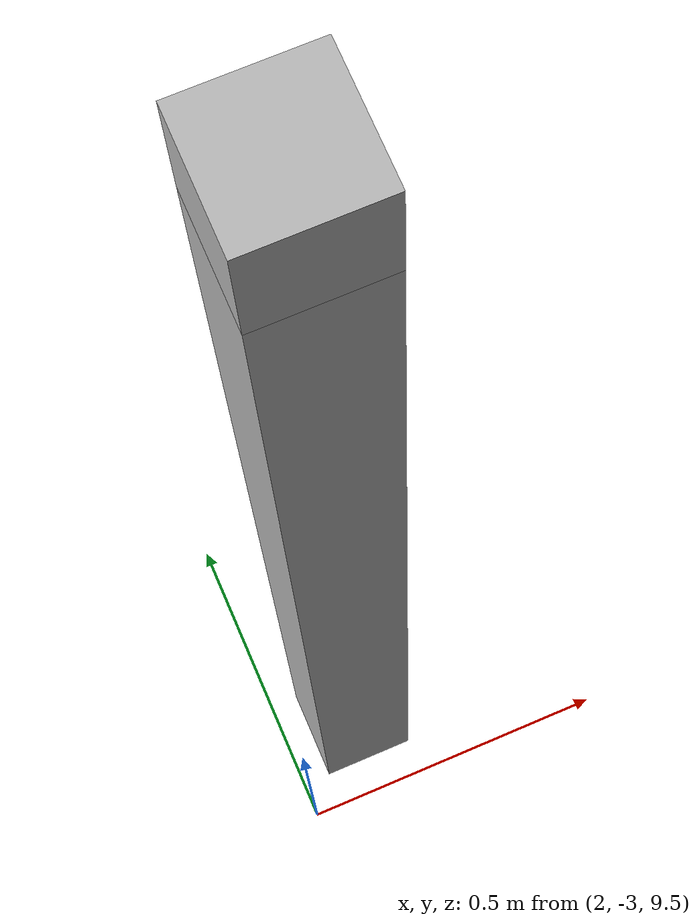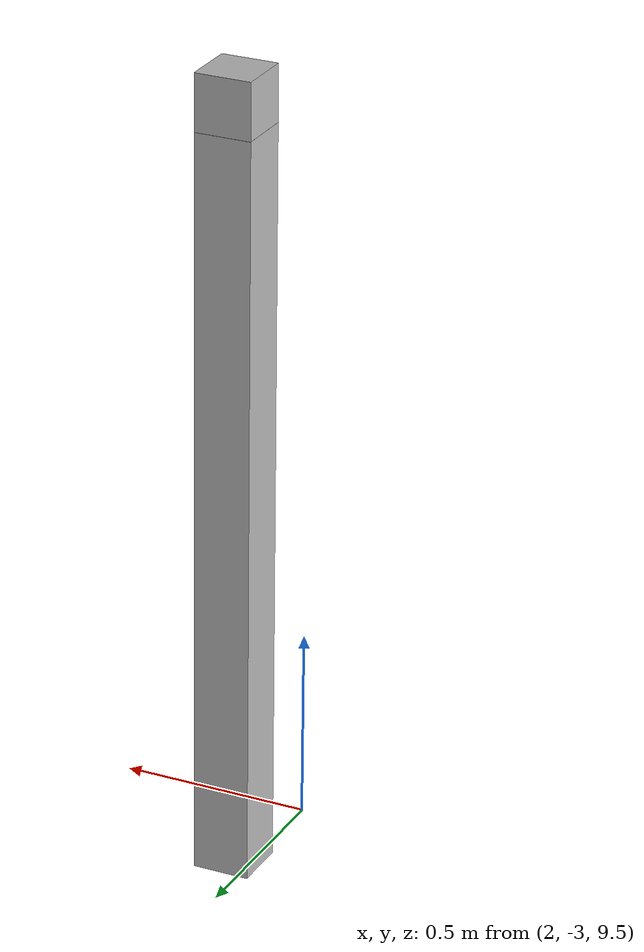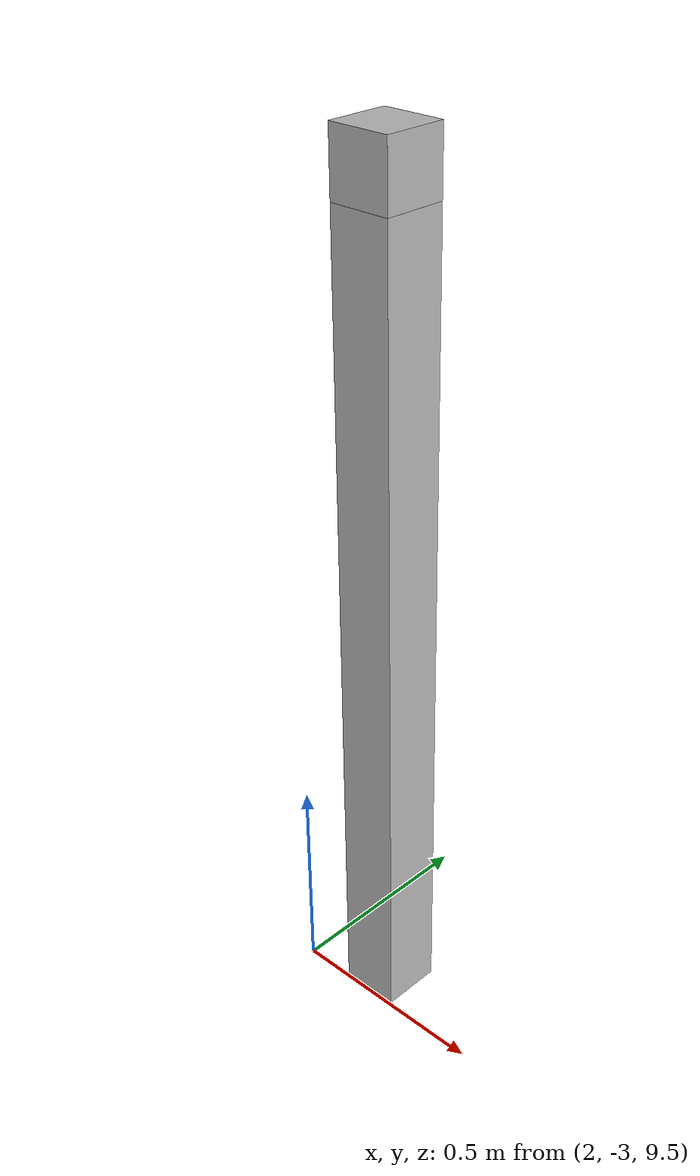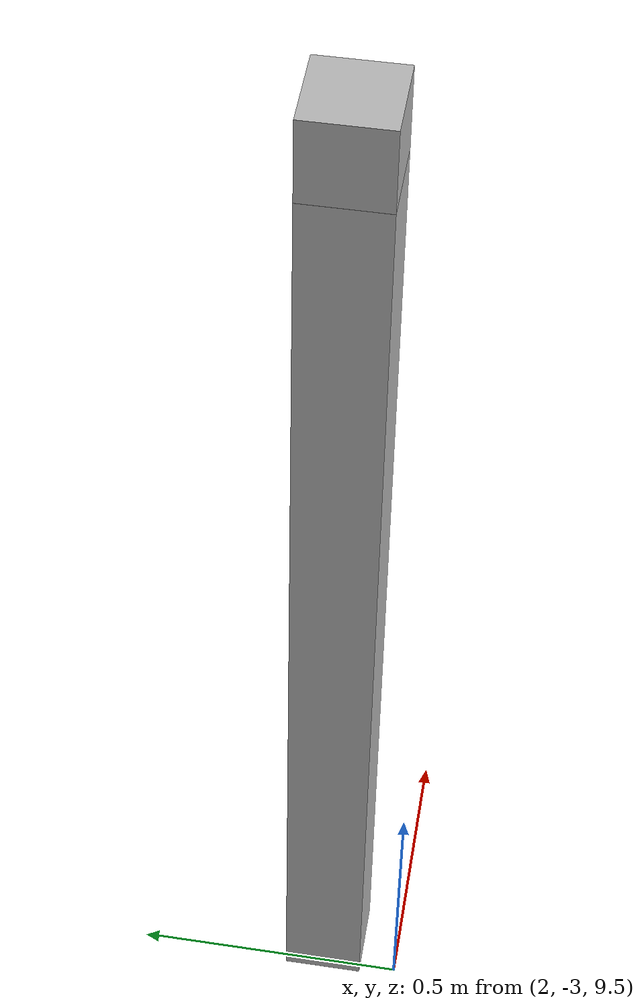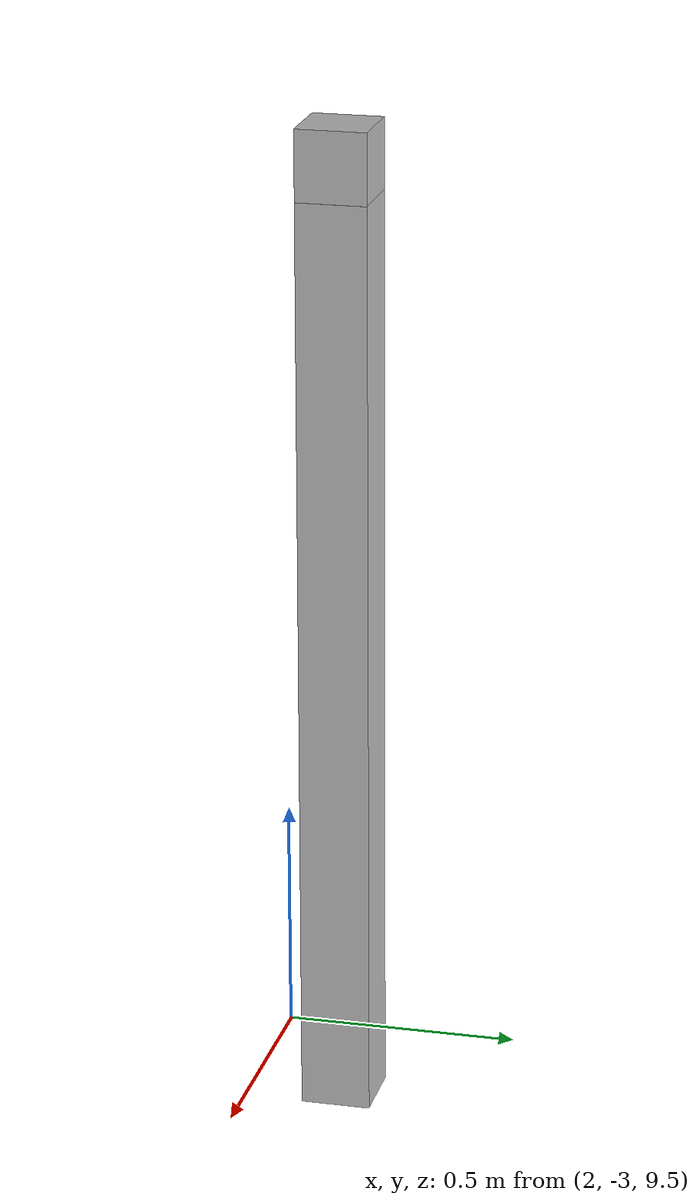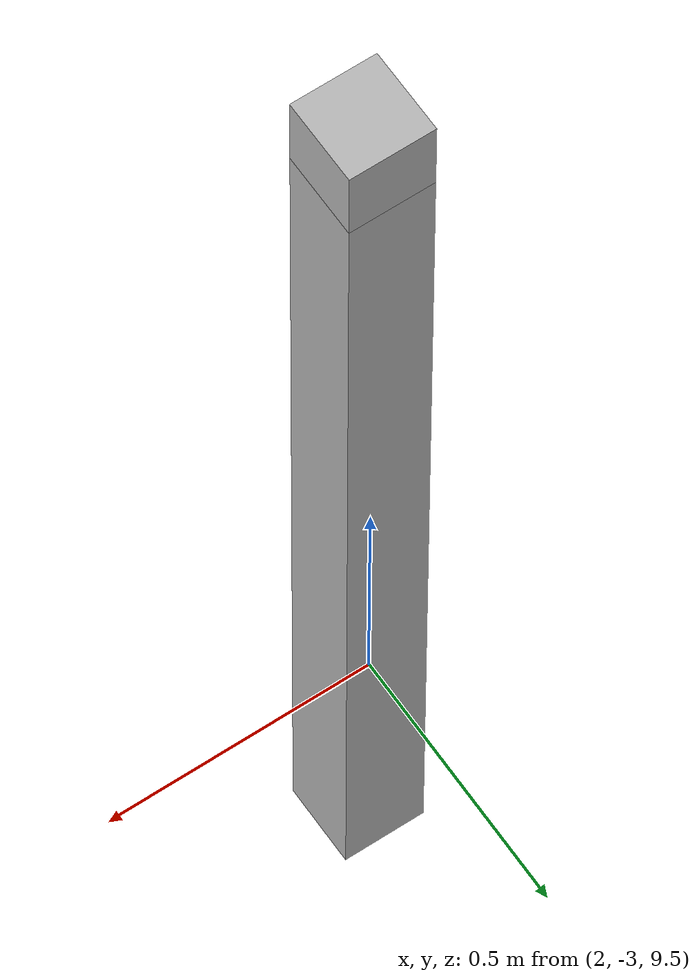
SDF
<sdf version="1.7">
 <world name="default">
  <model name="orthogonal_747_2.000.15_TS">
   <static>1</static>
   <link name="u_link_6_1_4">
    <inertial>
     <mass>1</mass>
     <inertia>
      <ixx>0.166667</ixx>
      <ixy>0</ixy>
      <ixz>0</ixz>
      <iyy>0.166667</iyy>
      <iyz>0</iyz>
      <izz>0.166667</izz>
     </inertia>
    </inertial>
    <pose>8.6 2.15 13.975 0 -0 0</pose>
    <visual name="visual_0">
     <laser_retro>5608</laser_retro>
     <geometry><box><size>0.15 1e-06 0.15</size></box></geometry>
     <material>
      <script><name>Gazebo/Grey</name><uri>file://media/materials/scripts/gazebo.material</uri></script>
      <shader type="pixel"><normal_map>__default__</normal_map></shader>
      <ambient>0.678 0.498 0.659 1</ambient>
      <diffuse>0.7 0.7 0.7 1</diffuse>
      <specular>0.01 0.01 0.01 1</specular>
      <emissive>0 0 0 1</emissive>
     </material>
     <pose>0 -0.075 0 0 -0 0</pose>
     <transparency>1</transparency>
    </visual>
    <visual name="visual_1">
     <laser_retro>5609</laser_retro>
     <geometry><box><size>0.15 1e-06 0.15</size></box></geometry>
     <material>
      <script><name>Gazebo/Grey</name><uri>file://media/materials/scripts/gazebo.material</uri></script>
      <shader type="pixel"><normal_map>__default__</normal_map></shader>
      <ambient>0.447 0.624 0.812 1</ambient>
      <diffuse>0.7 0.7 0.7 1</diffuse>
      <specular>0.01 0.01 0.01 1</specular>
      <emissive>0 0 0 1</emissive>
     </material>
     <pose>0 0.075 0 0 -0 0</pose>
     <transparency>1</transparency>
    </visual>
    <visual name="visual_2">
     <laser_retro>5610</laser_retro>
     <geometry><box><size>0.15 0.15 1e-06</size></box></geometry>
     <material>
      <script><name>Gazebo/Grey</name><uri>file://media/materials/scripts/gazebo.material</uri></script>
      <shader type="pixel"><normal_map>__default__</normal_map></shader>
      <ambient>0.988 0.686 0.243 1</ambient>
      <diffuse>0.7 0.7 0.7 1</diffuse>
      <specular>0.01 0.01 0.01 1</specular>
      <emissive>0 0 0 1</emissive>
     </material>
     <pose>0 0 -0.075 0 -0 0</pose>
     <transparency>1</transparency>
    </visual>
    <visual name="visual_3">
     <laser_retro>5611</laser_retro>
     <geometry><box><size>1e-06 0.15 0.15</size></box></geometry>
     <material>
      <script><name>Gazebo/Grey</name><uri>file://media/materials/scripts/gazebo.material</uri></script>
      <shader type="pixel"><normal_map>__default__</normal_map></shader>
      <ambient>0.988 0.914 0.31 1</ambient>
      <diffuse>0.7 0.7 0.7 1</diffuse>
      <specular>0.01 0.01 0.01 1</specular>
      <emissive>0 0 0 1</emissive>
     </material>
     <pose>0.075 0 0 0 -0 0</pose>
     <transparency>1</transparency>
    </visual>
    <visual name="visual_4">
     <laser_retro>5612</laser_retro>
     <geometry><box><size>0.15 0.15 1e-06</size></box></geometry>
     <material>
      <script><name>Gazebo/Grey</name><uri>file://media/materials/scripts/gazebo.material</uri></script>
      <shader type="pixel"><normal_map>__default__</normal_map></shader>
      <ambient>0.937 0.161 0.161 1</ambient>
      <diffuse>0.7 0.7 0.7 1</diffuse>
      <specular>0.01 0.01 0.01 1</specular>
      <emissive>0 0 0 1</emissive>
     </material>
     <pose>0 0 0.075 0 -0 0</pose>
     <transparency>1</transparency>
    </visual>
    <visual name="visual_5">
     <laser_retro>5613</laser_retro>
     <geometry><box><size>1e-06 0.15 0.15</size></box></geometry>
     <material>
      <script><name>Gazebo/Grey</name><uri>file://media/materials/scripts/gazebo.material</uri></script>
      <shader type="pixel"><normal_map>__default__</normal_map></shader>
      <ambient>0.541 0.886 0.204 1</ambient>
      <diffuse>0.7 0.7 0.7 1</diffuse>
      <specular>0.01 0.01 0.01 1</specular>
      <emissive>0 0 0 1</emissive>
     </material>
     <pose>-0.075 0 0 0 -0 0</pose>
     <transparency>1</transparency>
    </visual>
    <visual name="visual_texture">
     <geometry><box><size>0.149985 0.149985 0.149985</size></box></geometry>
     <material>
      <script>
       <uri>model://BASE_MODELS/simple_block_v2_textured/materials/scripts</uri>
       <uri>model://BASE_MODELS/simple_block_v2_textured/materials/textures</uri>
       <name>metal</name>
      </script>
     </material>
     <laser_retro>5614</laser_retro>
    </visual>
    <collision name="collision">
     <geometry><box><size>0.15 0.15 0.15</size></box></geometry>
     <surface>
      <friction>
       <ode><mu>1</mu><mu2>1</mu2><fdir1>0 0 0</fdir1><slip1>0</slip1><slip2>0</slip2></ode>
       <torsional>
        <coefficient>1</coefficient>
        <patch_radius>0</patch_radius>
        <surface_radius>0</surface_radius>
        <use_patch_radius>1</use_patch_radius>
        <ode><slip>0</slip></ode>
       </torsional>
      </friction>
      <bounce><restitution_coefficient>0</restitution_coefficient><threshold>1e+06</threshold></bounce>
      <contact>
       <collide_without_contact>0</collide_without_contact>
       <collide_without_contact_bitmask>1</collide_without_contact_bitmask>
       <collide_bitmask>1</collide_bitmask>
       <ode>
        <soft_cfm>0</soft_cfm>
        <soft_erp>0.2</soft_erp>
        <kp>1e+13</kp>
        <kd>1</kd>
        <max_vel>0.01</max_vel>
        <min_depth>0</min_depth>
       </ode>
       <bullet>
        <split_impulse>1</split_impulse>
        <split_impulse_penetration_threshold>-0.01</split_impulse_penetration_threshold>
        <soft_cfm>0</soft_cfm>
        <soft_erp>0.2</soft_erp>
        <kp>1e+13</kp>
        <kd>1</kd>
       </bullet>
      </contact>
     </surface>
    </collision>
   </link>
   <link name="z_link_6_1_4">
    <inertial>
     <mass>1</mass>
     <inertia>
      <ixx>0.166667</ixx>
      <ixy>0</ixy>
      <ixz>0</ixz>
      <iyy>0.166667</iyy>
      <iyz>0</iyz>
      <izz>0.166667</izz>
     </inertia>
    </inertial>
    <pose>8.6 2.15 12.9 0 -0 0</pose>
    <visual name="visual_0">
     <laser_retro>5615</laser_retro>
     <geometry><box><size>0.15 1e-06 2</size></box></geometry>
     <material>
      <script><name>Gazebo/Grey</name><uri>file://media/materials/scripts/gazebo.material</uri></script>
      <shader type="pixel"><normal_map>__default__</normal_map></shader>
      <ambient>0.678 0.498 0.659 1</ambient>
      <diffuse>0.7 0.7 0.7 1</diffuse>
      <specular>0.01 0.01 0.01 1</specular>
      <emissive>0 0 0 1</emissive>
     </material>
     <pose>0 -0.075 0 0 -0 0</pose>
     <transparency>1</transparency>
    </visual>
    <visual name="visual_1">
     <laser_retro>5616</laser_retro>
     <geometry><box><size>0.15 1e-06 2</size></box></geometry>
     <material>
      <script><name>Gazebo/Grey</name><uri>file://media/materials/scripts/gazebo.material</uri></script>
      <shader type="pixel"><normal_map>__default__</normal_map></shader>
      <ambient>0.447 0.624 0.812 1</ambient>
      <diffuse>0.7 0.7 0.7 1</diffuse>
      <specular>0.01 0.01 0.01 1</specular>
      <emissive>0 0 0 1</emissive>
     </material>
     <pose>0 0.075 0 0 -0 0</pose>
     <transparency>1</transparency>
    </visual>
    <visual name="visual_2">
     <laser_retro>5617</laser_retro>
     <geometry><box><size>0.15 0.15 1e-06</size></box></geometry>
     <material>
      <script><name>Gazebo/Grey</name><uri>file://media/materials/scripts/gazebo.material</uri></script>
      <shader type="pixel"><normal_map>__default__</normal_map></shader>
      <ambient>0.988 0.686 0.243 1</ambient>
      <diffuse>0.7 0.7 0.7 1</diffuse>
      <specular>0.01 0.01 0.01 1</specular>
      <emissive>0 0 0 1</emissive>
     </material>
     <pose>0 0 -1 0 -0 0</pose>
     <transparency>1</transparency>
    </visual>
    <visual name="visual_3">
     <laser_retro>5618</laser_retro>
     <geometry><box><size>1e-06 0.15 2</size></box></geometry>
     <material>
      <script><name>Gazebo/Grey</name><uri>file://media/materials/scripts/gazebo.material</uri></script>
      <shader type="pixel"><normal_map>__default__</normal_map></shader>
      <ambient>0.988 0.914 0.31 1</ambient>
      <diffuse>0.7 0.7 0.7 1</diffuse>
      <specular>0.01 0.01 0.01 1</specular>
      <emissive>0 0 0 1</emissive>
     </material>
     <pose>0.075 0 0 0 -0 0</pose>
     <transparency>1</transparency>
    </visual>
    <visual name="visual_4">
     <laser_retro>5619</laser_retro>
     <geometry><box><size>0.15 0.15 1e-06</size></box></geometry>
     <material>
      <script><name>Gazebo/Grey</name><uri>file://media/materials/scripts/gazebo.material</uri></script>
      <shader type="pixel"><normal_map>__default__</normal_map></shader>
      <ambient>0.937 0.161 0.161 1</ambient>
      <diffuse>0.7 0.7 0.7 1</diffuse>
      <specular>0.01 0.01 0.01 1</specular>
      <emissive>0 0 0 1</emissive>
     </material>
     <pose>0 0 1 0 -0 0</pose>
     <transparency>1</transparency>
    </visual>
    <visual name="visual_5">
     <laser_retro>5620</laser_retro>
     <geometry><box><size>1e-06 0.15 2</size></box></geometry>
     <material>
      <script><name>Gazebo/Grey</name><uri>file://media/materials/scripts/gazebo.material</uri></script>
      <shader type="pixel"><normal_map>__default__</normal_map></shader>
      <ambient>0.541 0.886 0.204 1</ambient>
      <diffuse>0.7 0.7 0.7 1</diffuse>
      <specular>0.01 0.01 0.01 1</specular>
      <emissive>0 0 0 1</emissive>
     </material>
     <pose>-0.075 0 0 0 -0 0</pose>
     <transparency>1</transparency>
    </visual>
    <visual name="visual_texture">
     <geometry><box><size>0.149985 0.149985 1.9998</size></box></geometry>
     <material>
      <script>
       <uri>model://BASE_MODELS/simple_block_v2_textured/materials/scripts</uri>
       <uri>model://BASE_MODELS/simple_block_v2_textured/materials/textures</uri>
       <name>metal</name>
      </script>
     </material>
     <laser_retro>5621</laser_retro>
    </visual>
    <collision name="collision">
     <geometry><box><size>0.15 0.15 2</size></box></geometry>
     <surface>
      <friction>
       <ode><mu>1</mu><mu2>1</mu2><fdir1>0 0 0</fdir1><slip1>0</slip1><slip2>0</slip2></ode>
       <torsional>
        <coefficient>1</coefficient>
        <patch_radius>0</patch_radius>
        <surface_radius>0</surface_radius>
        <use_patch_radius>1</use_patch_radius>
        <ode><slip>0</slip></ode>
       </torsional>
      </friction>
      <bounce><restitution_coefficient>0</restitution_coefficient><threshold>1e+06</threshold></bounce>
      <contact>
       <collide_without_contact>0</collide_without_contact>
       <collide_without_contact_bitmask>1</collide_without_contact_bitmask>
       <collide_bitmask>1</collide_bitmask>
       <ode>
        <soft_cfm>0</soft_cfm>
        <soft_erp>0.2</soft_erp>
        <kp>1e+13</kp>
        <kd>1</kd>
        <max_vel>0.01</max_vel>
        <min_depth>0</min_depth>
       </ode>
       <bullet>
        <split_impulse>1</split_impulse>
        <split_impulse_penetration_threshold>-0.01</split_impulse_penetration_threshold>
        <soft_cfm>0</soft_cfm>
        <soft_erp>0.2</soft_erp>
        <kp>1e+13</kp>
        <kd>1</kd>
       </bullet>
      </contact>
     </surface>
    </collision>
   </link>
   <pose>-6.47624 -5 -2.5 0 -0 0</pose>
  </model>
 </world>
</sdf>
